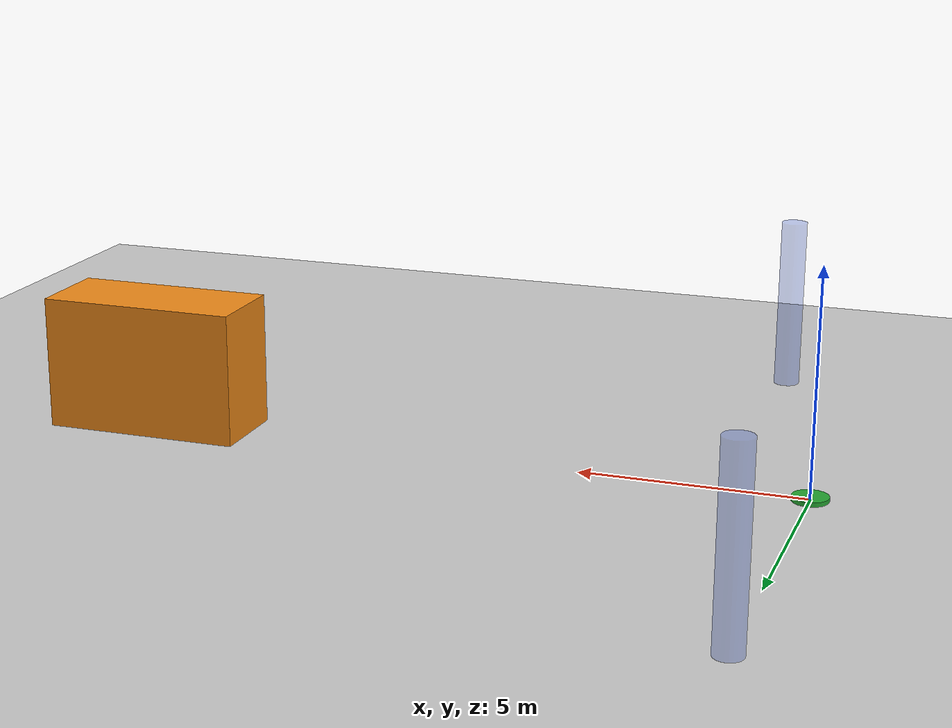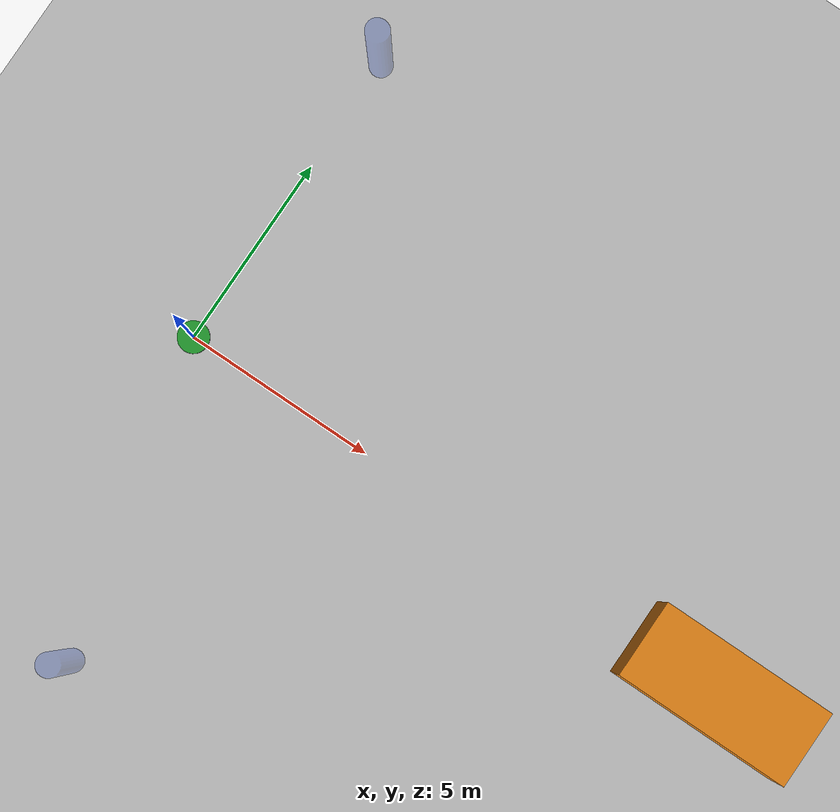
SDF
<sdf version="1.6">
 <world name="test_multi_threat">
  <physics type="ode">
   <max_step_size>0.001</max_step_size>
   <real_time_factor>1</real_time_factor>
   <real_time_update_rate>1000</real_time_update_rate>
  </physics>
  <include><uri>model://sun</uri></include>
  <include><uri>model://ground_plane</uri></include>
  <model name="vehicle">
   <pose>15.0 0.0 1.5 0 0 3.14159</pose>
   <link name="body">
    <inertial>
     <mass>1500.0</mass>
     <inertia><ixx>500</ixx><ixy>0</ixy><ixz>0</ixz><iyy>2000</iyy><iyz>0</iyz><izz>2000</izz></inertia>
    </inertial>
    <collision name="c"><geometry><box><size>4.5 2.0 3.0</size></box></geometry></collision>
    <visual name="v">
     <geometry><box><size>4.5 2.0 3.0</size></box></geometry>
     <material>
      <script><uri>file://media/materials/scripts/gazebo.material</uri><name>Gazebo/Orange</name></script>
     </material>
    </visual>
   </link>
  </model>
  <model name="ped_collider_0">
   <static>false</static>
   <pose>0.0 8.0 2.0 0 0 0</pose>
   <link name="link">
    <inertial>
     <mass>1.0</mass>
     <inertia><ixx>0.1</ixx><ixy>0</ixy><ixz>0</ixz><iyy>0.1</iyy><iyz>0</iyz><izz>0.1</izz></inertia>
    </inertial>
    <collision name="collision">
     <geometry><cylinder><radius>0.3</radius><length>4.0</length></cylinder></geometry>
    </collision>
    <visual name="visual">
     <geometry><cylinder><radius>0.3</radius><length>4.0</length></cylinder></geometry>
     <material>
      <script><uri>file://media/materials/scripts/gazebo.material</uri><name>Gazebo/Blue</name></script>
     </material>
     <transparency>0.7</transparency>
    </visual>
   </link>
  </model>
  <model name="ped_collider_1">
   <static>false</static>
   <pose>2.0 -8.0 2.0 0 0 0</pose>
   <link name="link">
    <inertial>
     <mass>1.0</mass>
     <inertia><ixx>0.1</ixx><ixy>0</ixy><ixz>0</ixz><iyy>0.1</iyy><iyz>0</iyz><izz>0.1</izz></inertia>
    </inertial>
    <collision name="collision">
     <geometry><cylinder><radius>0.3</radius><length>4.0</length></cylinder></geometry>
    </collision>
    <visual name="visual">
     <geometry><cylinder><radius>0.3</radius><length>4.0</length></cylinder></geometry>
     <material>
      <script><uri>file://media/materials/scripts/gazebo.material</uri><name>Gazebo/Blue</name></script>
     </material>
     <transparency>0.7</transparency>
    </visual>
   </link>
  </model>
  <model name="origin_marker">
   <static>true</static>
   <pose>0 0 0.05 0 0 0</pose>
   <link name="link">
    <visual name="v">
     <geometry><cylinder><radius>0.4</radius><length>0.1</length></cylinder></geometry>
     <material>
      <script><uri>file://media/materials/scripts/gazebo.material</uri><name>Gazebo/Green</name></script>
     </material>
    </visual>
   </link>
  </model>
 </world>
</sdf>
